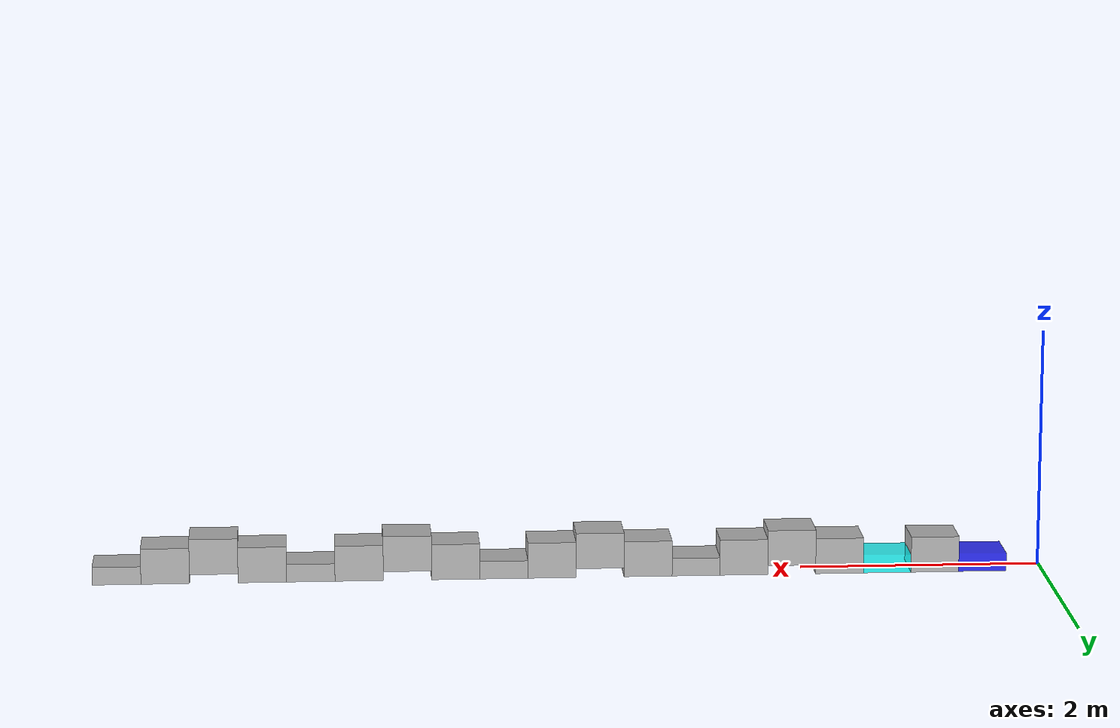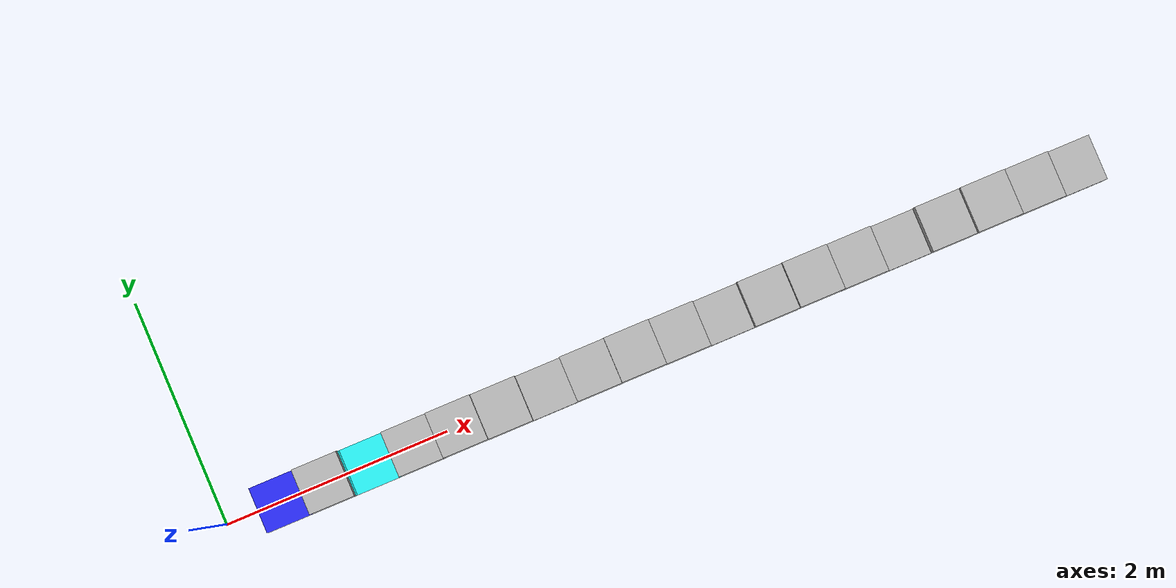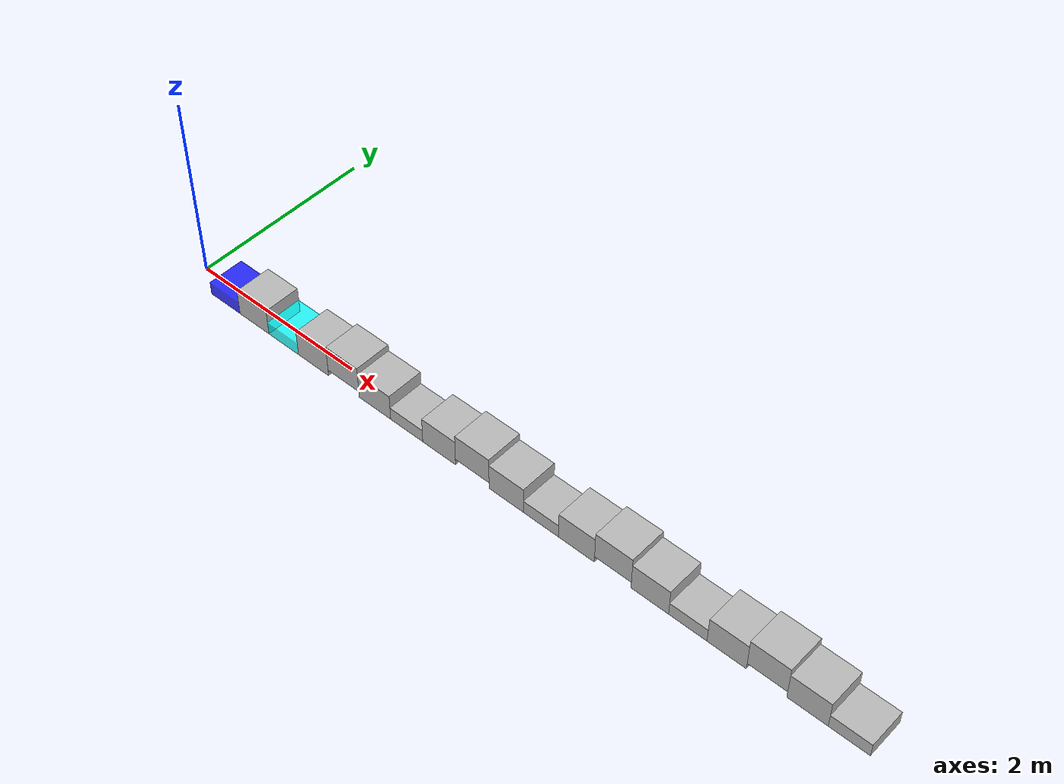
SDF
<sdf version='1.4'>
  <world name='terrain'>

    <model name='Box01'>
      <pose>0.50 0.0 0.075 0 0 0</pose>
      <link name='Box01'>
        <pose>0 0 0 0 0 0</pose>
        <collision name='collision'>
          <geometry>
            <box>
              <size>0.4 0.4 0.15</size>
            </box>
          </geometry>
        </collision>
        <visual name='visual'>
          <geometry>
            <box>
              <size>0.4 0.4 0.15</size>
            </box>
          </geometry>
          <material>
            <diffuse>0 0 1 .8</diffuse>
            <ambient>0 0 1 .8</ambient>
          </material>
        </visual>
      </link>
      <static>1</static>
    </model>

    <model name='Box02'>
      <pose>0.90 0.0 0.15 0 0 0</pose>
      <link name='Box02'>
        <pose>0 0 0 0 0 0</pose>
        <collision name='collision'>
          <geometry>
            <box>
              <size>0.4 0.4 0.3</size>
            </box>
          </geometry>
        </collision>
        <visual name='visual'>
          <geometry>
            <box>
              <size>0.4 0.4 0.3</size>
            </box>
          </geometry>
        </visual>
      </link>
      <static>1</static>
    </model>

    <model name='Box03'>
      <pose>1.30 0.0 0.075 0 0 0</pose>
      <link name='Box03'>
        <pose>0 0 0 0 0 0</pose>
        <collision name='collision'>
          <geometry>
            <box>
              <size>0.4 0.4 0.15</size>
            </box>
          </geometry>
        </collision>
        <visual name='visual'>
          <geometry>
            <box>
              <size>0.4 0.4 0.15</size>
            </box>
          </geometry>
          <material>
            <diffuse>0 1 1 .8</diffuse>
            <ambient>0 1 1 .8</ambient>
          </material>
        </visual>
      </link>
      <static>1</static>
    </model>

    <model name='Box04'>
      <pose>1.70 0.0 0.15 0 0 0</pose>
      <link name='Box04'>
        <pose>0 0 0 0 0 0</pose>
        <collision name='collision'>
          <geometry>
            <box>
              <size>0.4 0.4 0.3</size>
            </box>
          </geometry>
        </collision>
        <visual name='visual'>
          <geometry>
            <box>
              <size>0.4 0.4 0.3</size>
            </box>
          </geometry>
        </visual>
      </link>
      <static>1</static>
    </model>

    <model name='Box05'>
      <pose>2.10 0.0 0.225 0 0 0</pose>
      <link name='Box05'>
        <pose>0 0 0 0 0 0</pose>
        <collision name='collision'>
          <geometry>
            <box>
              <size>0.4 0.4 0.45</size>
            </box>
          </geometry>
        </collision>
        <visual name='visual'>
          <geometry>
            <box>
              <size>0.4 0.4 0.3</size>
            </box>
          </geometry>
        </visual>
      </link>
      <static>1</static>
    </model>

    <model name='Box06'>
      <pose>2.50 0.0 0.15 0 0 0</pose>
      <link name='Box06'>
        <pose>0 0 0 0 0 0</pose>
        <collision name='collision'>
          <geometry>
            <box>
              <size>0.4 0.4 0.3</size>
            </box>
          </geometry>
        </collision>
        <visual name='visual'>
          <geometry>
            <box>
              <size>0.4 0.4 0.3</size>
            </box>
          </geometry>
        </visual>
      </link>
      <static>1</static>
    </model>

    <model name='Box07'>
      <pose>2.90 0.0 0.075 0 0 0</pose>
      <link name='Box07'>
        <pose>0 0 0 0 0 0</pose>
        <collision name='collision'>
          <geometry>
            <box>
              <size>0.4 0.4 0.15</size>
            </box>
          </geometry>
        </collision>
        <visual name='visual'>
          <geometry>
            <box>
              <size>0.4 0.4 0.15</size>
            </box>
          </geometry>
        </visual>
      </link>
      <static>1</static>
    </model>

    <model name='Box08'>
      <pose>3.30 0.0 0.15 0 0 0</pose>
      <link name='Box08'>
        <pose>0 0 0 0 0 0</pose>
        <collision name='collision'>
          <geometry>
            <box>
              <size>0.4 0.4 0.3</size>
            </box>
          </geometry>
        </collision>
        <visual name='visual'>
          <geometry>
            <box>
              <size>0.4 0.4 0.3</size>
            </box>
          </geometry>
        </visual>
      </link>
      <static>1</static>
    </model>

    <model name='Box09'>
      <pose>3.70 0.0 0.225 0 0 0</pose>
      <link name='Box09'>
        <pose>0 0 0 0 0 0</pose>
        <collision name='collision'>
          <geometry>
            <box>
              <size>0.4 0.4 0.45</size>
            </box>
          </geometry>
        </collision>
        <visual name='visual'>
          <geometry>
            <box>
              <size>0.4 0.4 0.3</size>
            </box>
          </geometry>
        </visual>
      </link>
      <static>1</static>
    </model>

    <model name='Box10'>
      <pose>4.10 0.0 0.15 0 0 0</pose>
      <link name='Box10'>
        <pose>0 0 0 0 0 0</pose>
        <collision name='collision'>
          <geometry>
            <box>
              <size>0.4 0.4 0.3</size>
            </box>
          </geometry>
        </collision>
        <visual name='visual'>
          <geometry>
            <box>
              <size>0.4 0.4 0.3</size>
            </box>
          </geometry>
        </visual>
      </link>
      <static>1</static>
    </model>

    <model name='Box11'>
      <pose>4.50 0.0 0.075 0 0 0</pose>
      <link name='Box11'>
        <pose>0 0 0 0 0 0</pose>
        <collision name='collision'>
          <geometry>
            <box>
              <size>0.4 0.4 0.15</size>
            </box>
          </geometry>
        </collision>
        <visual name='visual'>
          <geometry>
            <box>
              <size>0.4 0.4 0.15</size>
            </box>
          </geometry>
        </visual>
      </link>
      <static>1</static>
    </model>

    <model name='Box12'>
      <pose>4.90 0.0 0.15 0 0 0</pose>
      <link name='Box12'>
        <pose>0 0 0 0 0 0</pose>
        <collision name='collision'>
          <geometry>
            <box>
              <size>0.4 0.4 0.3</size>
            </box>
          </geometry>
        </collision>
        <visual name='visual'>
          <geometry>
            <box>
              <size>0.4 0.4 0.3</size>
            </box>
          </geometry>
        </visual>
      </link>
      <static>1</static>
    </model>

    <model name='Box13'>
      <pose>5.30 0.0 0.225 0 0 0</pose>
      <link name='Box13'>
        <pose>0 0 0 0 0 0</pose>
        <collision name='collision'>
          <geometry>
            <box>
              <size>0.4 0.4 0.45</size>
            </box>
          </geometry>
        </collision>
        <visual name='visual'>
          <geometry>
            <box>
              <size>0.4 0.4 0.3</size>
            </box>
          </geometry>
        </visual>
      </link>
      <static>1</static>
    </model>

    <model name='Box14'>
      <pose>5.70 0.0 0.15 0 0 0</pose>
      <link name='Box14'>
        <pose>0 0 0 0 0 0</pose>
        <collision name='collision'>
          <geometry>
            <box>
              <size>0.4 0.4 0.3</size>
            </box>
          </geometry>
        </collision>
        <visual name='visual'>
          <geometry>
            <box>
              <size>0.4 0.4 0.3</size>
            </box>
          </geometry>
        </visual>
      </link>
      <static>1</static>
    </model>

    <model name='Box15'>
      <pose>6.10 0.0 0.075 0 0 0</pose>
      <link name='Box15'>
        <pose>0 0 0 0 0 0</pose>
        <collision name='collision'>
          <geometry>
            <box>
              <size>0.4 0.4 0.15</size>
            </box>
          </geometry>
        </collision>
        <visual name='visual'>
          <geometry>
            <box>
              <size>0.4 0.4 0.15</size>
            </box>
          </geometry>
        </visual>
      </link>
      <static>1</static>
    </model>

    <model name='Box16'>
      <pose>6.50 0.0 0.15 0 0 0</pose>
      <link name='Box16'>
        <pose>0 0 0 0 0 0</pose>
        <collision name='collision'>
          <geometry>
            <box>
              <size>0.4 0.4 0.3</size>
            </box>
          </geometry>
        </collision>
        <visual name='visual'>
          <geometry>
            <box>
              <size>0.4 0.4 0.3</size>
            </box>
          </geometry>
        </visual>
      </link>
      <static>1</static>
    </model>

    <model name='Box17'>
      <pose>6.90 0.0 0.225 0 0 0</pose>
      <link name='Box17'>
        <pose>0 0 0 0 0 0</pose>
        <collision name='collision'>
          <geometry>
            <box>
              <size>0.4 0.4 0.45</size>
            </box>
          </geometry>
        </collision>
        <visual name='visual'>
          <geometry>
            <box>
              <size>0.4 0.4 0.3</size>
            </box>
          </geometry>
        </visual>
      </link>
      <static>1</static>
    </model>

    <model name='Box18'>
      <pose>7.30 0.0 0.15 0 0 0</pose>
      <link name='Box18'>
        <pose>0 0 0 0 0 0</pose>
        <collision name='collision'>
          <geometry>
            <box>
              <size>0.4 0.4 0.3</size>
            </box>
          </geometry>
        </collision>
        <visual name='visual'>
          <geometry>
            <box>
              <size>0.4 0.4 0.3</size>
            </box>
          </geometry>
        </visual>
      </link>
      <static>1</static>
    </model>

    <model name='Box19'>
      <pose>7.70 0.0 0.075 0 0 0</pose>
      <link name='Box19'>
        <pose>0 0 0 0 0 0</pose>
        <collision name='collision'>
          <geometry>
            <box>
              <size>0.4 0.4 0.15</size>
            </box>
          </geometry>
        </collision>
        <visual name='visual'>
          <geometry>
            <box>
              <size>0.4 0.4 0.15</size>
            </box>
          </geometry>
        </visual>
      </link>
      <static>1</static>
    </model>

  </world>
</sdf>
